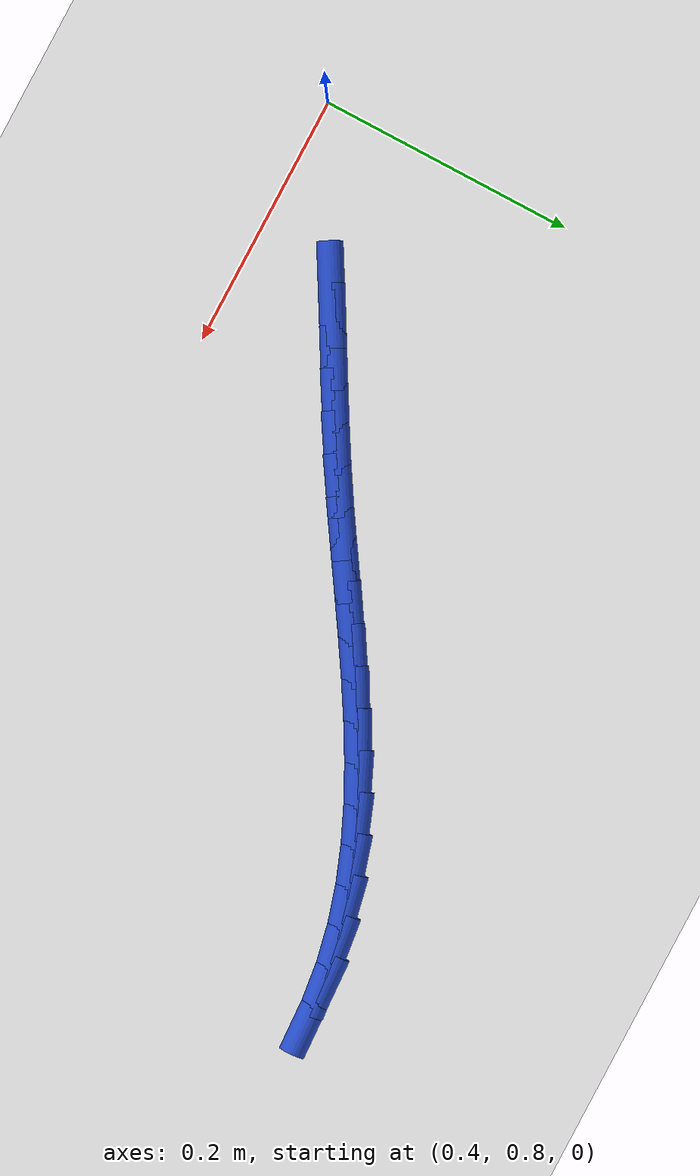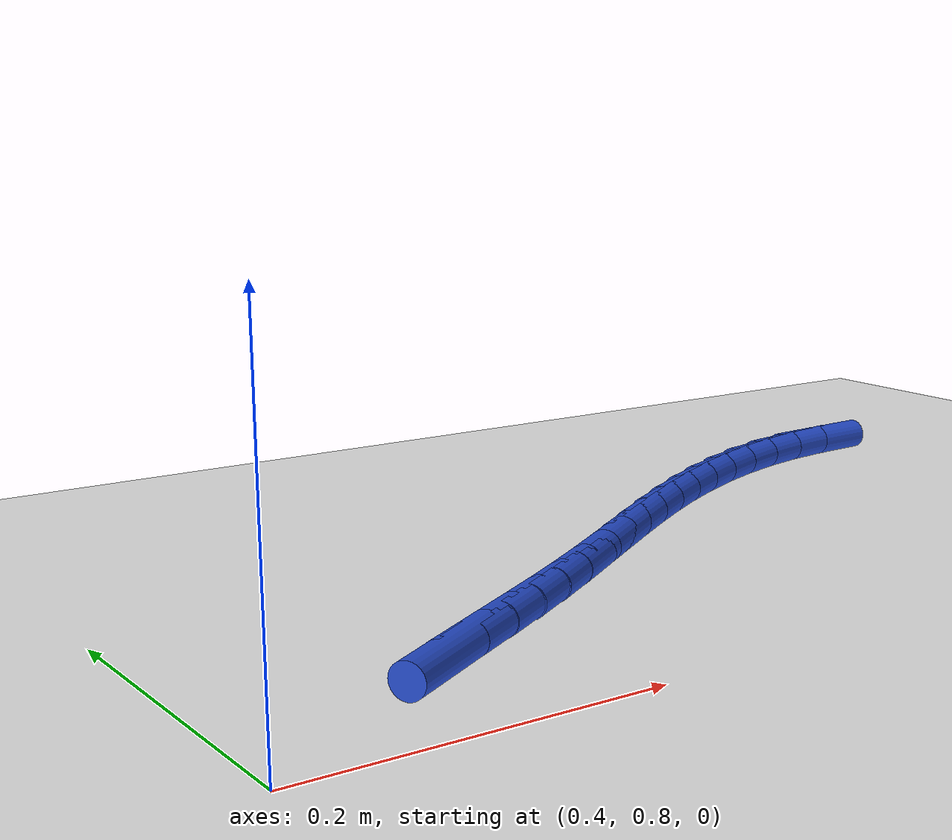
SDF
<sdf version="1.6">
 <world name="default">
  <model name="ground_plane">
   <static>1</static>
   <link name="link">
    <collision name="collision">
     <geometry><plane><normal>0 0 1</normal><size>100 100</size></plane></geometry>
     <surface><friction><ode><mu>100</mu><mu2>50</mu2></ode></friction></surface>
    </collision>
    <visual name="visual">
     <cast_shadows>0</cast_shadows>
     <geometry><plane><normal>0 0 1</normal><size>100 100</size></plane></geometry>
     <material>
      <script><uri>file://media/materials/scripts/gazebo.material</uri><name>Gazebo/WhiteGlow</name></script>
     </material>
    </visual>
   </link>
  </model>
  <model name="line">
   <link name="link_34">
    <pose>0.5262596995405647 0.8698881378642535 0.01 0 1.57 0.5235211687718093</pose>
    <collision name="collision">
     <geometry><cylinder><radius>0.01</radius><length>0.08</length></cylinder></geometry>
    </collision>
    <visual name="visual">
     <material>
      <script><name>Gazebo/Blue</name><uri>file://media/materials/scripts/gazebo.material</uri></script>
     </material>
     <geometry><cylinder><radius>0.01</radius><length>0.08</length></cylinder></geometry>
    </visual>
   </link>
   <link name="link_35">
    <pose>0.5533744075422284 0.8855400162384623 0.01 0 1.57 0.5180695622502376</pose>
    <collision name="collision">
     <geometry><cylinder><radius>0.01</radius><length>0.08</length></cylinder></geometry>
    </collision>
    <visual name="visual">
     <material>
      <script><name>Gazebo/Blue</name><uri>file://media/materials/scripts/gazebo.material</uri></script>
     </material>
     <geometry><cylinder><radius>0.01</radius><length>0.08</length></cylinder></geometry>
    </visual>
   </link>
   <link name="link_36">
    <pose>0.580709631121322 0.9011211311188863 0.01 0 1.57 0.5214444527282545</pose>
    <collision name="collision">
     <geometry><cylinder><radius>0.01</radius><length>0.08</length></cylinder></geometry>
    </collision>
    <visual name="visual">
     <material>
      <script><name>Gazebo/Blue</name><uri>file://media/materials/scripts/gazebo.material</uri></script>
     </material>
     <geometry><cylinder><radius>0.01</radius><length>0.08</length></cylinder></geometry>
    </visual>
   </link>
   <link name="link_37">
    <pose>0.6081086566502177 0.9168613617332605 0.01 0 1.57 0.533539737842028</pose>
    <collision name="collision">
     <geometry><cylinder><radius>0.01</radius><length>0.08</length></cylinder></geometry>
    </collision>
    <visual name="visual">
     <material>
      <script><name>Gazebo/Blue</name><uri>file://media/materials/scripts/gazebo.material</uri></script>
     </material>
     <geometry><cylinder><radius>0.01</radius><length>0.08</length></cylinder></geometry>
    </visual>
   </link>
   <link name="link_38">
    <pose>0.6354147705012866 0.9329905873093206 0.01 0 1.57 0.5530765222836852</pose>
    <collision name="collision">
     <geometry><cylinder><radius>0.01</radius><length>0.08</length></cylinder></geometry>
    </collision>
    <visual name="visual">
     <material>
      <script><name>Gazebo/Blue</name><uri>file://media/materials/scripts/gazebo.material</uri></script>
     </material>
     <geometry><cylinder><radius>0.01</radius><length>0.08</length></cylinder></geometry>
    </visual>
   </link>
   <link name="link_39">
    <pose>0.6624883467744029 0.9497043569322907 0.01 0 1.57 0.5691643577340945</pose>
    <collision name="collision">
     <geometry><cylinder><radius>0.01</radius><length>0.08</length></cylinder></geometry>
    </collision>
    <visual name="visual">
     <material>
      <script><name>Gazebo/Blue</name><uri>file://media/materials/scripts/gazebo.material</uri></script>
     </material>
     <geometry><cylinder><radius>0.01</radius><length>0.08</length></cylinder></geometry>
    </visual>
   </link>
   <link name="link_40">
    <pose>0.6893447555070588 0.9668868247037277 0.01 0 1.57 0.5761210144276192</pose>
    <collision name="collision">
     <geometry><cylinder><radius>0.01</radius><length>0.08</length></cylinder></geometry>
    </collision>
    <visual name="visual">
     <material>
      <script><name>Gazebo/Blue</name><uri>file://media/materials/scripts/gazebo.material</uri></script>
     </material>
     <geometry><cylinder><radius>0.01</radius><length>0.08</length></cylinder></geometry>
    </visual>
   </link>
   <link name="link_41">
    <pose>0.7160819109879252 0.9842563089868874 0.01 0 1.57 0.5739373194317391</pose>
    <collision name="collision">
     <geometry><cylinder><radius>0.01</radius><length>0.08</length></cylinder></geometry>
    </collision>
    <visual name="visual">
     <material>
      <script><name>Gazebo/Blue</name><uri>file://media/materials/scripts/gazebo.material</uri></script>
     </material>
     <geometry><cylinder><radius>0.01</radius><length>0.08</length></cylinder></geometry>
    </visual>
   </link>
   <link name="link_42">
    <pose>0.7427984957673237 1.0015295846669987 0.01 0 1.57 0.5625388767694409</pose>
    <collision name="collision">
     <geometry><cylinder><radius>0.01</radius><length>0.08</length></cylinder></geometry>
    </collision>
    <visual name="visual">
     <material>
      <script><name>Gazebo/Blue</name><uri>file://media/materials/scripts/gazebo.material</uri></script>
     </material>
     <geometry><cylinder><radius>0.01</radius><length>0.08</length></cylinder></geometry>
    </visual>
   </link>
   <link name="link_43">
    <pose>0.769593192395576 1.01842342662929 0.01 0 1.57 0.5417348971957683</pose>
    <collision name="collision">
     <geometry><cylinder><radius>0.01</radius><length>0.08</length></cylinder></geometry>
    </collision>
    <visual name="visual">
     <material>
      <script><name>Gazebo/Blue</name><uri>file://media/materials/scripts/gazebo.material</uri></script>
     </material>
     <geometry><cylinder><radius>0.01</radius><length>0.08</length></cylinder></geometry>
    </visual>
   </link>
   <link name="link_44">
    <pose>0.7965646834230035 1.0346546097589908 0.01 0 1.57 0.5112422892850454</pose>
    <collision name="collision">
     <geometry><cylinder><radius>0.01</radius><length>0.08</length></cylinder></geometry>
    </collision>
    <visual name="visual">
     <material>
      <script><name>Gazebo/Blue</name><uri>file://media/materials/scripts/gazebo.material</uri></script>
     </material>
     <geometry><cylinder><radius>0.01</radius><length>0.08</length></cylinder></geometry>
    </visual>
   </link>
   <link name="link_45">
    <pose>0.8238116513999274 1.0499399089413295 0.01 0 1.57 0.4707364337846891</pose>
    <collision name="collision">
     <geometry><cylinder><radius>0.01</radius><length>0.08</length></cylinder></geometry>
    </collision>
    <visual name="visual">
     <material>
      <script><name>Gazebo/Blue</name><uri>file://media/materials/scripts/gazebo.material</uri></script>
     </material>
     <geometry><cylinder><radius>0.01</radius><length>0.08</length></cylinder></geometry>
    </visual>
   </link>
   <link name="link_46">
    <pose>0.8514327788766696 1.0639960990615354 0.01 0 1.57 0.41993650338634947</pose>
    <collision name="collision">
     <geometry><cylinder><radius>0.01</radius><length>0.08</length></cylinder></geometry>
    </collision>
    <visual name="visual">
     <material>
      <script><name>Gazebo/Blue</name><uri>file://media/materials/scripts/gazebo.material</uri></script>
     </material>
     <geometry><cylinder><radius>0.01</radius><length>0.08</length></cylinder></geometry>
    </visual>
   </link>
   <link name="link_47">
    <pose>0.8795267484035513 1.0765399550048371 0.01 0 1.57 0.3587320220550655</pose>
    <collision name="collision">
     <geometry><cylinder><radius>0.01</radius><length>0.08</length></cylinder></geometry>
    </collision>
    <visual name="visual">
     <material>
      <script><name>Gazebo/Blue</name><uri>file://media/materials/scripts/gazebo.material</uri></script>
     </material>
     <geometry><cylinder><radius>0.01</radius><length>0.08</length></cylinder></geometry>
    </visual>
   </link>
   <link name="link_48">
    <pose>0.9081922425308943 1.0872882516564635 0.01 0 1.57 0.28734873083687706</pose>
    <collision name="collision">
     <geometry><cylinder><radius>0.01</radius><length>0.08</length></cylinder></geometry>
    </collision>
    <visual name="visual">
     <material>
      <script><name>Gazebo/Blue</name><uri>file://media/materials/scripts/gazebo.material</uri></script>
     </material>
     <geometry><cylinder><radius>0.01</radius><length>0.08</length></cylinder></geometry>
    </visual>
   </link>
   <link name="link_49">
    <pose>0.9375279438090196 1.0959577639016433 0.01 0 1.57 0.2069095050335091</pose>
    <collision name="collision">
     <geometry><cylinder><radius>0.01</radius><length>0.08</length></cylinder></geometry>
    </collision>
    <visual name="visual">
     <material>
      <script><name>Gazebo/Blue</name><uri>file://media/materials/scripts/gazebo.material</uri></script>
     </material>
     <geometry><cylinder><radius>0.01</radius><length>0.08</length></cylinder></geometry>
    </visual>
   </link>
   <link name="link_50">
    <pose>0.9676244748101472 1.102275437049532 0.01 0 1.57 0.1253019849651596</pose>
    <collision name="collision">
     <geometry><cylinder><radius>0.01</radius><length>0.08</length></cylinder></geometry>
    </collision>
    <visual name="visual">
     <material>
      <script><name>Gazebo/Blue</name><uri>file://media/materials/scripts/gazebo.material</uri></script>
     </material>
     <geometry><cylinder><radius>0.01</radius><length>0.08</length></cylinder></geometry>
    </visual>
   </link>
   <link name="link_51">
    <pose>0.9984243915354494 1.106155053119983 0.01 0 1.57 0.04847560307408553</pose>
    <collision name="collision">
     <geometry><cylinder><radius>0.01</radius><length>0.08</length></cylinder></geometry>
    </collision>
    <visual name="visual">
     <material>
      <script><name>Gazebo/Blue</name><uri>file://media/materials/scripts/gazebo.material</uri></script>
     </material>
     <geometry><cylinder><radius>0.01</radius><length>0.08</length></cylinder></geometry>
    </visual>
   </link>
  </model>
 </world>
</sdf>
